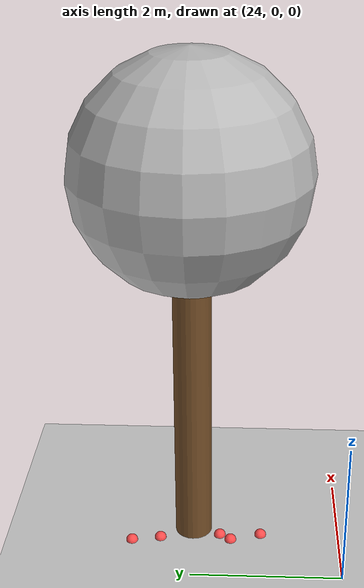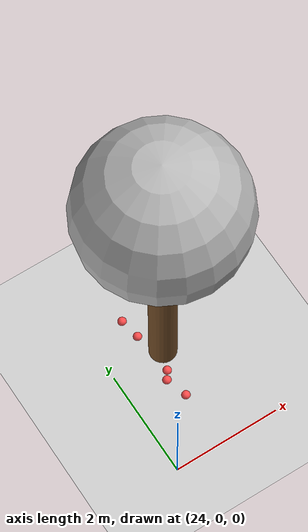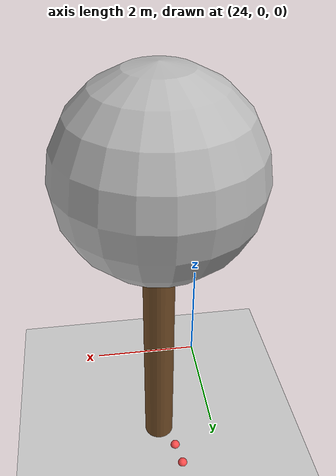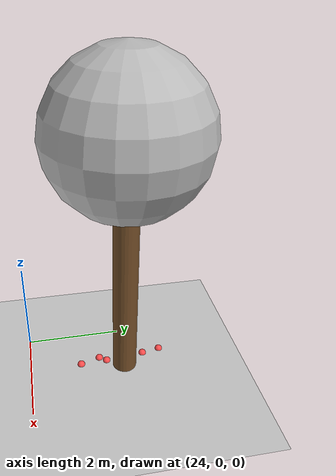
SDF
<sdf version="1.7">
 <world name="default">
  <model name="ground_plane">
   <static>1</static>
   <link name="link">
    <collision name="collision">
     <geometry><plane><normal>0 0 1</normal><size>100 100</size></plane></geometry>
     <surface>
      <contact><collide_bitmask>65535</collide_bitmask></contact>
      <friction><ode><mu>100</mu><mu2>50</mu2></ode></friction>
     </surface>
    </collision>
    <visual name="visual">
     <cast_shadows>0</cast_shadows>
     <geometry><plane><normal>0 0 1</normal><size>100 100</size></plane></geometry>
     <material>
      <script><uri>file://media/materials/scripts/gazebo.material</uri><name>Gazebo/Grey</name></script>
     </material>
    </visual>
   </link>
  </model>
  <model name="tree_simple_92">
   <static>1</static>
   <link name="link">
    <pose>0 0 0.1 0 -0 0</pose>
    <inertial>
     <mass>666</mass>
     <inertia>
      <ixx>0.0861167</ixx>
      <ixy>0</ixy>
      <ixz>0</ixz>
      <iyy>0.0861167</iyy>
      <iyz>0</iyz>
      <izz>0.0861167</izz>
     </inertia>
    </inertial>
    <collision name="collision_trunk">
     <pose>0 0 2 0 -0 0</pose>
     <geometry><cylinder><radius>0.25</radius><length>4</length></cylinder></geometry>
     <surface>
      <contact>
       <poissons_ratio>0.347</poissons_ratio>
       <elastic_modulus>8.8e+09</elastic_modulus>
       <ode><kp>100000</kp><kd>100</kd><max_vel>100</max_vel><min_depth>0.001</min_depth></ode>
      </contact>
      <friction>
       <torsional>
        <coefficient>1</coefficient>
        <use_patch_radius>0</use_patch_radius>
        <surface_radius>0.01</surface_radius>
       </torsional>
      </friction>
     </surface>
    </collision>
    <collision name="collision_treetop">
     <pose>0 0 5.2 0 -0 0</pose>
     <geometry><sphere><radius>1.5</radius></sphere></geometry>
     <surface>
      <contact>
       <poissons_ratio>0.347</poissons_ratio>
       <elastic_modulus>8.8e+09</elastic_modulus>
       <ode><kp>100000</kp><kd>100</kd><max_vel>100</max_vel><min_depth>0.001</min_depth></ode>
      </contact>
      <friction>
       <torsional>
        <coefficient>1</coefficient>
        <use_patch_radius>0</use_patch_radius>
        <surface_radius>0.01</surface_radius>
       </torsional>
      </friction>
     </surface>
    </collision>
    <visual name="trunk">
     <pose>0 0 2 0 -0 0</pose>
     <geometry><cylinder><radius>0.25</radius><length>4</length></cylinder></geometry>
     <material>
      <script>
       <uri>model://tree_simple/scripts</uri>
       <uri>model://tree_simple/materials/textures</uri>
       <name>TreeSimple/Trunk</name>
      </script>
     </material>
    </visual>
    <visual name="treetop">
     <pose>0 0 5.2 0 -0 0</pose>
     <geometry><sphere><radius>1.5</radius></sphere></geometry>
     <material>
      <script>
       <uri>model://tree_simple/scripts</uri>
       <uri>model://tree_simple/materials/textures</uri>
       <name>TreeSimple/Treetop</name>
      </script>
     </material>
    </visual>
   </link>
   <pose>25 2 -0.1 0 -0 0</pose>
  </model>
  <model name="seed_red_375">
   <link name="link">
    <inertial>
     <mass>1</mass>
     <inertia><ixx>0.1</ixx><ixy>0</ixy><ixz>0</ixz><iyy>0.1</iyy><iyz>0</iyz><izz>0.1</izz></inertia>
    </inertial>
    <visual name="visual">
     <geometry><sphere><radius>0.08</radius></sphere></geometry>
     <material>
      <script><name>Gazebo/Grey</name><uri>file://media/materials/scripts/gazebo.material</uri></script>
      <shader type="pixel"><normal_map>__default__</normal_map></shader>
      <ambient>1 0.3 0.3 1</ambient>
      <diffuse>0.7 0.7 0.7 1</diffuse>
      <specular>0.01 0.01 0.01 1</specular>
      <emissive>0 0 0 1</emissive>
     </material>
    </visual>
    <collision name="collision">
     <geometry><sphere><radius>0.0005</radius></sphere></geometry>
     <surface>
      <friction>
       <ode><mu>1</mu><mu2>1</mu2><fdir1>0 0 0</fdir1><slip1>0</slip1><slip2>0</slip2></ode>
       <torsional>
        <coefficient>1</coefficient>
        <patch_radius>0</patch_radius>
        <surface_radius>0</surface_radius>
        <use_patch_radius>1</use_patch_radius>
        <ode><slip>0</slip></ode>
       </torsional>
      </friction>
      <bounce><restitution_coefficient>0</restitution_coefficient><threshold>1e+06</threshold></bounce>
      <contact>
       <collide_without_contact>0</collide_without_contact>
       <collide_without_contact_bitmask>1</collide_without_contact_bitmask>
       <collide_bitmask>1</collide_bitmask>
       <ode>
        <soft_cfm>0</soft_cfm>
        <soft_erp>0.2</soft_erp>
        <kp>1e+13</kp>
        <kd>1</kd>
        <max_vel>0.01</max_vel>
        <min_depth>0</min_depth>
       </ode>
       <bullet>
        <split_impulse>1</split_impulse>
        <split_impulse_penetration_threshold>-0.01</split_impulse_penetration_threshold>
        <soft_cfm>0</soft_cfm>
        <soft_erp>0.2</soft_erp>
        <kp>1e+13</kp>
        <kd>1</kd>
       </bullet>
      </contact>
     </surface>
    </collision>
   </link>
   <static>0</static>
   <pose>24.7495 1.48443 0.0005 0 -0 0</pose>
  </model>
  <model name="seed_red_376">
   <link name="link">
    <inertial>
     <mass>1</mass>
     <inertia><ixx>0.1</ixx><ixy>0</ixy><ixz>0</ixz><iyy>0.1</iyy><iyz>0</iyz><izz>0.1</izz></inertia>
    </inertial>
    <visual name="visual">
     <geometry><sphere><radius>0.08</radius></sphere></geometry>
     <material>
      <script><name>Gazebo/Grey</name><uri>file://media/materials/scripts/gazebo.material</uri></script>
      <shader type="pixel"><normal_map>__default__</normal_map></shader>
      <ambient>1 0.3 0.3 1</ambient>
      <diffuse>0.7 0.7 0.7 1</diffuse>
      <specular>0.01 0.01 0.01 1</specular>
      <emissive>0 0 0 1</emissive>
     </material>
    </visual>
    <collision name="collision">
     <geometry><sphere><radius>0.0005</radius></sphere></geometry>
     <surface>
      <friction>
       <ode><mu>1</mu><mu2>1</mu2><fdir1>0 0 0</fdir1><slip1>0</slip1><slip2>0</slip2></ode>
       <torsional>
        <coefficient>1</coefficient>
        <patch_radius>0</patch_radius>
        <surface_radius>0</surface_radius>
        <use_patch_radius>1</use_patch_radius>
        <ode><slip>0</slip></ode>
       </torsional>
      </friction>
      <bounce><restitution_coefficient>0</restitution_coefficient><threshold>1e+06</threshold></bounce>
      <contact>
       <collide_without_contact>0</collide_without_contact>
       <collide_without_contact_bitmask>1</collide_without_contact_bitmask>
       <collide_bitmask>1</collide_bitmask>
       <ode>
        <soft_cfm>0</soft_cfm>
        <soft_erp>0.2</soft_erp>
        <kp>1e+13</kp>
        <kd>1</kd>
        <max_vel>0.01</max_vel>
        <min_depth>0</min_depth>
       </ode>
       <bullet>
        <split_impulse>1</split_impulse>
        <split_impulse_penetration_threshold>-0.01</split_impulse_penetration_threshold>
        <soft_cfm>0</soft_cfm>
        <soft_erp>0.2</soft_erp>
        <kp>1e+13</kp>
        <kd>1</kd>
       </bullet>
      </contact>
     </surface>
    </collision>
   </link>
   <static>0</static>
   <pose>24.6972 2.83618 0.0005 0 -0 0</pose>
  </model>
  <model name="seed_red_377">
   <link name="link">
    <inertial>
     <mass>1</mass>
     <inertia><ixx>0.1</ixx><ixy>0</ixy><ixz>0</ixz><iyy>0.1</iyy><iyz>0</iyz><izz>0.1</izz></inertia>
    </inertial>
    <visual name="visual">
     <geometry><sphere><radius>0.08</radius></sphere></geometry>
     <material>
      <script><name>Gazebo/Grey</name><uri>file://media/materials/scripts/gazebo.material</uri></script>
      <shader type="pixel"><normal_map>__default__</normal_map></shader>
      <ambient>1 0.3 0.3 1</ambient>
      <diffuse>0.7 0.7 0.7 1</diffuse>
      <specular>0.01 0.01 0.01 1</specular>
      <emissive>0 0 0 1</emissive>
     </material>
    </visual>
    <collision name="collision">
     <geometry><sphere><radius>0.0005</radius></sphere></geometry>
     <surface>
      <friction>
       <ode><mu>1</mu><mu2>1</mu2><fdir1>0 0 0</fdir1><slip1>0</slip1><slip2>0</slip2></ode>
       <torsional>
        <coefficient>1</coefficient>
        <patch_radius>0</patch_radius>
        <surface_radius>0</surface_radius>
        <use_patch_radius>1</use_patch_radius>
        <ode><slip>0</slip></ode>
       </torsional>
      </friction>
      <bounce><restitution_coefficient>0</restitution_coefficient><threshold>1e+06</threshold></bounce>
      <contact>
       <collide_without_contact>0</collide_without_contact>
       <collide_without_contact_bitmask>1</collide_without_contact_bitmask>
       <collide_bitmask>1</collide_bitmask>
       <ode>
        <soft_cfm>0</soft_cfm>
        <soft_erp>0.2</soft_erp>
        <kp>1e+13</kp>
        <kd>1</kd>
        <max_vel>0.01</max_vel>
        <min_depth>0</min_depth>
       </ode>
       <bullet>
        <split_impulse>1</split_impulse>
        <split_impulse_penetration_threshold>-0.01</split_impulse_penetration_threshold>
        <soft_cfm>0</soft_cfm>
        <soft_erp>0.2</soft_erp>
        <kp>1e+13</kp>
        <kd>1</kd>
       </bullet>
      </contact>
     </surface>
    </collision>
   </link>
   <static>0</static>
   <pose>24.8509 1.6338 0.0005 0 -0 0</pose>
  </model>
  <model name="seed_red_378">
   <link name="link">
    <inertial>
     <mass>1</mass>
     <inertia><ixx>0.1</ixx><ixy>0</ixy><ixz>0</ixz><iyy>0.1</iyy><iyz>0</iyz><izz>0.1</izz></inertia>
    </inertial>
    <visual name="visual">
     <geometry><sphere><radius>0.08</radius></sphere></geometry>
     <material>
      <script><name>Gazebo/Grey</name><uri>file://media/materials/scripts/gazebo.material</uri></script>
      <shader type="pixel"><normal_map>__default__</normal_map></shader>
      <ambient>1 0.3 0.3 1</ambient>
      <diffuse>0.7 0.7 0.7 1</diffuse>
      <specular>0.01 0.01 0.01 1</specular>
      <emissive>0 0 0 1</emissive>
     </material>
    </visual>
    <collision name="collision">
     <geometry><sphere><radius>0.0005</radius></sphere></geometry>
     <surface>
      <friction>
       <ode><mu>1</mu><mu2>1</mu2><fdir1>0 0 0</fdir1><slip1>0</slip1><slip2>0</slip2></ode>
       <torsional>
        <coefficient>1</coefficient>
        <patch_radius>0</patch_radius>
        <surface_radius>0</surface_radius>
        <use_patch_radius>1</use_patch_radius>
        <ode><slip>0</slip></ode>
       </torsional>
      </friction>
      <bounce><restitution_coefficient>0</restitution_coefficient><threshold>1e+06</threshold></bounce>
      <contact>
       <collide_without_contact>0</collide_without_contact>
       <collide_without_contact_bitmask>1</collide_without_contact_bitmask>
       <collide_bitmask>1</collide_bitmask>
       <ode>
        <soft_cfm>0</soft_cfm>
        <soft_erp>0.2</soft_erp>
        <kp>1e+13</kp>
        <kd>1</kd>
        <max_vel>0.01</max_vel>
        <min_depth>0</min_depth>
       </ode>
       <bullet>
        <split_impulse>1</split_impulse>
        <split_impulse_penetration_threshold>-0.01</split_impulse_penetration_threshold>
        <soft_cfm>0</soft_cfm>
        <soft_erp>0.2</soft_erp>
        <kp>1e+13</kp>
        <kd>1</kd>
       </bullet>
      </contact>
     </surface>
    </collision>
   </link>
   <static>0</static>
   <pose>24.7663 2.44891 0.0005 0 -0 0</pose>
  </model>
  <model name="seed_red_382">
   <link name="link">
    <inertial>
     <mass>1</mass>
     <inertia><ixx>0.1</ixx><ixy>0</ixy><ixz>0</ixz><iyy>0.1</iyy><iyz>0</iyz><izz>0.1</izz></inertia>
    </inertial>
    <visual name="visual">
     <geometry><sphere><radius>0.08</radius></sphere></geometry>
     <material>
      <script><name>Gazebo/Grey</name><uri>file://media/materials/scripts/gazebo.material</uri></script>
      <shader type="pixel"><normal_map>__default__</normal_map></shader>
      <ambient>1 0.3 0.3 1</ambient>
      <diffuse>0.7 0.7 0.7 1</diffuse>
      <specular>0.01 0.01 0.01 1</specular>
      <emissive>0 0 0 1</emissive>
     </material>
    </visual>
    <collision name="collision">
     <geometry><sphere><radius>0.0005</radius></sphere></geometry>
     <surface>
      <friction>
       <ode><mu>1</mu><mu2>1</mu2><fdir1>0 0 0</fdir1><slip1>0</slip1><slip2>0</slip2></ode>
       <torsional>
        <coefficient>1</coefficient>
        <patch_radius>0</patch_radius>
        <surface_radius>0</surface_radius>
        <use_patch_radius>1</use_patch_radius>
        <ode><slip>0</slip></ode>
       </torsional>
      </friction>
      <bounce><restitution_coefficient>0</restitution_coefficient><threshold>1e+06</threshold></bounce>
      <contact>
       <collide_without_contact>0</collide_without_contact>
       <collide_without_contact_bitmask>1</collide_without_contact_bitmask>
       <collide_bitmask>1</collide_bitmask>
       <ode>
        <soft_cfm>0</soft_cfm>
        <soft_erp>0.2</soft_erp>
        <kp>1e+13</kp>
        <kd>1</kd>
        <max_vel>0.01</max_vel>
        <min_depth>0</min_depth>
       </ode>
       <bullet>
        <split_impulse>1</split_impulse>
        <split_impulse_penetration_threshold>-0.01</split_impulse_penetration_threshold>
        <soft_cfm>0</soft_cfm>
        <soft_erp>0.2</soft_erp>
        <kp>1e+13</kp>
        <kd>1</kd>
       </bullet>
      </contact>
     </surface>
    </collision>
   </link>
   <static>0</static>
   <pose>24.8712 1.07365 0.0005 0 -0 0</pose>
  </model>
 </world>
</sdf>
